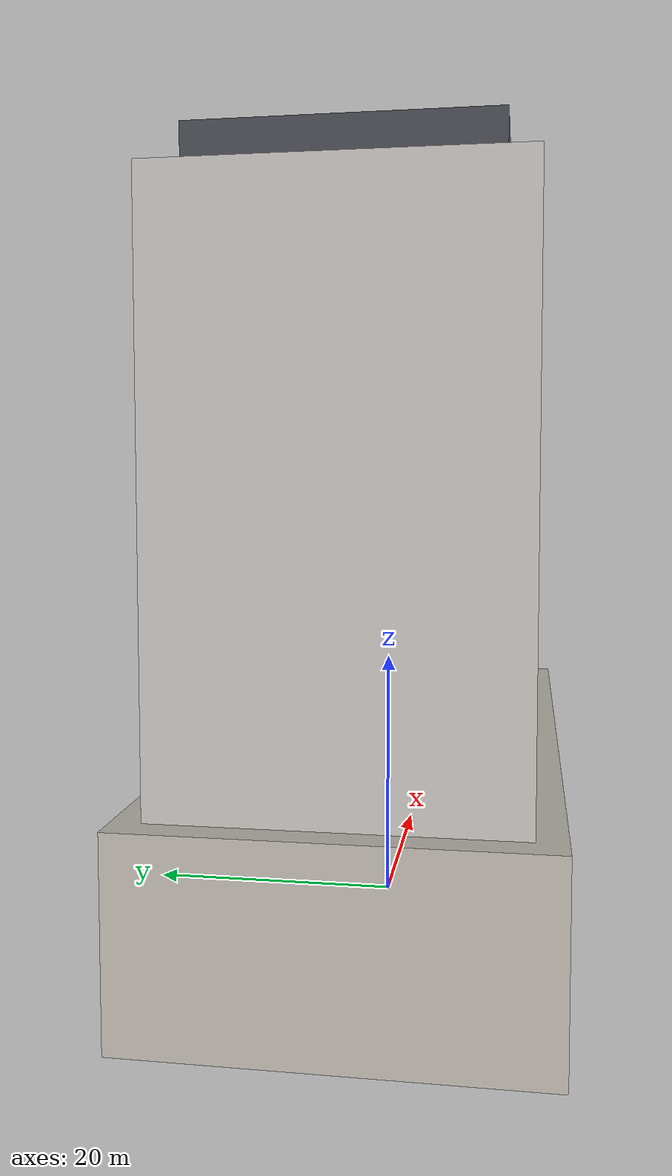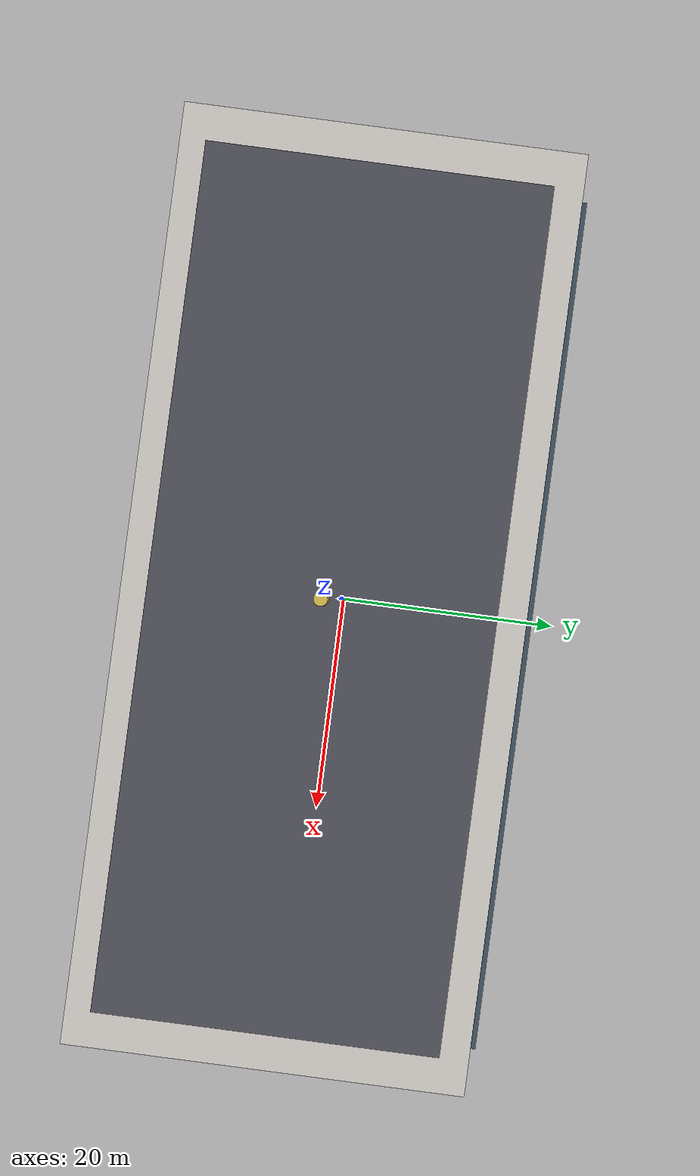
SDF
<?xml version="1.0" ?>
<sdf version="1.8">
  <model name="guanxin_imperial_plaza">
    <static>true</static>
    <link name="bldg_link">
      <collision name="podium_col"><pose>0 0 7.0 0 0 0</pose><geometry><box><size>60.0 28.0 14.0</size></box></geometry></collision>
      <collision name="tower_col"><pose>0 0 34.0 0 0 0</pose><geometry><box><size>56.0 24.0 40.0</size></box></geometry></collision>
      <!-- 1F~3F 宏偉崗石基座 (高 14m) -->
      <visual name="podium_vis"><pose>0 0 7.0 0 0 0</pose><geometry><box><size>60.0 28.0 14.0</size></box></geometry><material><ambient>0.74 0.72 0.68 1</ambient><diffuse>0.80 0.78 0.74 1</diffuse></material></visual>
      <visual name="arcade_floor"><pose>0 12.5 0.08 0 0 0</pose><geometry><box><size>58.0 3.5 0.02</size></box></geometry><material><ambient>0.62 0.60 0.58 1</ambient><diffuse>0.70 0.68 0.66 1</diffuse></material></visual>
      <visual name="arcade_ceiling"><pose>0 12.5 4.5 0 0 0</pose><geometry><box><size>58.0 3.5 0.25</size></box></geometry><material><ambient>0.28 0.28 0.30 1</ambient><diffuse>0.32 0.32 0.35 1</diffuse></material></visual>
      <visual name="arcade_col_-24"><pose>-24.0 13.8 2.25 0 0 0</pose><geometry><cylinder><radius>0.45</radius><length>4.5</length></cylinder></geometry><material><ambient>0.40 0.38 0.36 1</ambient><diffuse>0.48 0.46 0.44 1</diffuse></material></visual>
      <visual name="arcade_col_-12"><pose>-12.0 13.8 2.25 0 0 0</pose><geometry><cylinder><radius>0.45</radius><length>4.5</length></cylinder></geometry><material><ambient>0.40 0.38 0.36 1</ambient><diffuse>0.48 0.46 0.44 1</diffuse></material></visual>
      <visual name="arcade_col_0"><pose>0.0 13.8 2.25 0 0 0</pose><geometry><cylinder><radius>0.45</radius><length>4.5</length></cylinder></geometry><material><ambient>0.40 0.38 0.36 1</ambient><diffuse>0.48 0.46 0.44 1</diffuse></material></visual>
      <visual name="arcade_col_12"><pose>12.0 13.8 2.25 0 0 0</pose><geometry><cylinder><radius>0.45</radius><length>4.5</length></cylinder></geometry><material><ambient>0.40 0.38 0.36 1</ambient><diffuse>0.48 0.46 0.44 1</diffuse></material></visual>
      <visual name="arcade_col_24"><pose>24.0 13.8 2.25 0 0 0</pose><geometry><cylinder><radius>0.45</radius><length>4.5</length></cylinder></geometry><material><ambient>0.40 0.38 0.36 1</ambient><diffuse>0.48 0.46 0.44 1</diffuse></material></visual>
      <!-- 玉山銀行旗艦分行 (E.SUN Bank) 綠色經典招牌與挑高大門 -->
      <visual name="esun_fascia"><pose>-14.0 14.1 4.8 0 0 0</pose><geometry><box><size>22.0 0.2 1.6</size></box></geometry><material><ambient>0.05 0.45 0.28 1</ambient><diffuse>0.08 0.62 0.38 1</diffuse><emissive>0.04 0.30 0.18 1</emissive></material></visual>
      <visual name="esun_glass"><pose>-14.0 14.05 2.2 0 0 0</pose><geometry><box><size>20.0 0.1 3.8</size></box></geometry><material><ambient>0.15 0.25 0.35 0.88</ambient><diffuse>0.20 0.35 0.45 0.88</diffuse><specular>0.9 0.95 1.0 1</specular></material></visual>
      <visual name="retail_fascia"><pose>14.0 14.1 4.8 0 0 0</pose><geometry><box><size>22.0 0.2 1.6</size></box></geometry><material><ambient>0.22 0.22 0.25 1</ambient><diffuse>0.28 0.28 0.32 1</diffuse></material></visual>
      <visual name="retail_glass"><pose>14.0 14.05 2.2 0 0 0</pose><geometry><box><size>20.0 0.1 3.8</size></box></geometry><material><ambient>0.15 0.25 0.35 0.88</ambient><diffuse>0.20 0.35 0.45 0.88</diffuse><specular>0.9 0.95 1.0 1</specular></material></visual>
      <!-- 4F~17F 現代豪宅塔樓 -->
      <visual name="tower_main_vis"><pose>0 0 34.0 0 0 0</pose><geometry><box><size>56.0 24.0 40.0</size></box></geometry><material><ambient>0.78 0.76 0.74 1</ambient><diffuse>0.84 0.82 0.80 1</diffuse></material></visual>
      <visual name="balconies_west"><pose>0 12.2 34.0 0 0 0</pose><geometry><box><size>52.0 0.8 34.0</size></box></geometry><material><ambient>0.20 0.25 0.30 0.9</ambient><diffuse>0.25 0.32 0.38 0.9</diffuse><specular>0.9 0.95 1.0 1</specular></material></visual>
      <!-- 頂部造型冠頂 (Crown) -->
      <visual name="tower_crown"><pose>0 0 55.5 0 0 0</pose><geometry><box><size>50.0 20.0 3.0</size></box></geometry><material><ambient>0.25 0.25 0.28 1</ambient><diffuse>0.32 0.32 0.36 1</diffuse></material></visual>
      <visual name="crown_spire"><pose>0 0 58.0 0 0 0</pose><geometry><cylinder><radius>0.4</radius><length>4.0</length></cylinder></geometry><material><ambient>0.7 0.6 0.2 1</ambient><diffuse>0.85 0.75 0.3 1</diffuse></material></visual>
    </link>
  </model>
</sdf>
